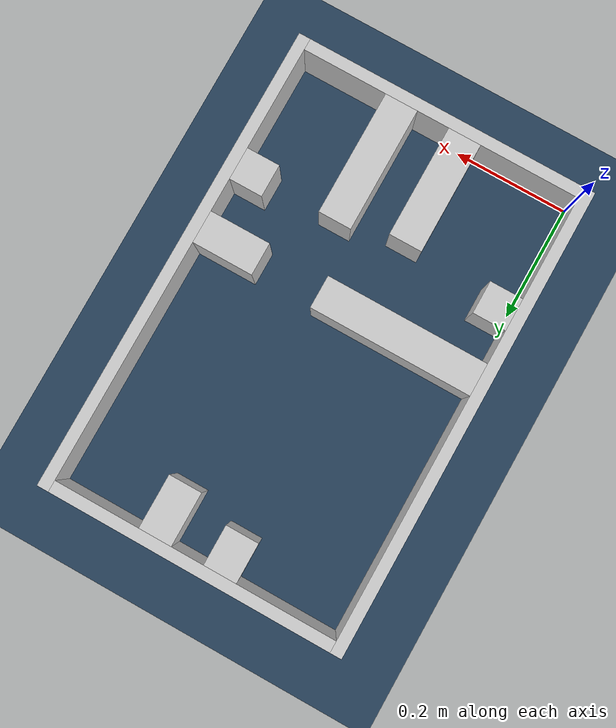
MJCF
<?xml version="1.0" ?>
<mujoco model="generated_real_template">
  <compiler angle="degree"/>
  <option timestep="0.002" integrator="implicitfast" iterations="100" cone="elliptic"/>
  <default>
    <geom density="1"/>
  </default>
  <asset>
    <texture builtin="gradient" height="3072" rgb1="0.3 0.5 0.7" rgb2="0 0 0" type="skybox" width="512"/>
    <texture builtin="checker" height="300" mark="edge" markrgb="0.8 0.8 0.8" name="groundplane" rgb1="0.2 0.3 0.4" rgb2="0.1 0.2 0.3" type="2d" width="300"/>
    <material name="groundplane" reflectance="0.2" texrepeat="5 5" texture="groundplane" texuniform="true"/>
  </asset>
  <worldbody>
    <light dir="0 0 -1" directional="true" pos="0 0 1.5"/>
    <geom name="floor" type="plane" condim="4" friction="0.5 0.005 0.001" material="groundplane" size="0 0 0.05"/>
    <body name="walls">
      <geom name="wall_boundary_left" type="box" condim="4" friction="1.0 0.005 0.0001" rgba="0.8 0.8 0.8 1" pos="-0.010000 0.387500 0.050000" euler="0 0 0.000000" size="0.010000 0.407500 0.050000"/>
      <geom name="wall_boundary_right" type="box" condim="4" friction="1.0 0.005 0.0001" rgba="0.8 0.8 0.8 1" pos="0.500000 0.387500 0.050000" euler="0 0 0.000000" size="0.010000 0.407500 0.050000"/>
      <geom name="wall_boundary_bottom" type="box" condim="4" friction="1.0 0.005 0.0001" rgba="0.8 0.8 0.8 1" pos="0.245000 -0.010000 0.050000" euler="0 0 0.000000" size="0.245000 0.010000 0.050000"/>
      <geom name="wall_boundary_top" type="box" condim="4" friction="1.0 0.005 0.0001" rgba="0.8 0.8 0.8 1" pos="0.245000 0.785000 0.050000" euler="0 0 0.000000" size="0.245000 0.010000 0.050000"/>
      <geom name="wall_inner_1_1" type="box" condim="4" friction="1.0 0.005 0.0001" rgba="0.8 0.8 0.8 1" pos="0.314245 0.108237 0.050000" euler="0 0 90.000000" size="0.108237 0.028500 0.050000"/>
      <geom name="wall_inner_1_2" type="box" condim="4" friction="1.0 0.005 0.0001" rgba="0.8 0.8 0.8 1" pos="0.314245 0.728645 0.050000" euler="0 0 90.000000" size="0.046355 0.028500 0.050000"/>
      <geom name="wall_inner_2_1" type="box" condim="4" friction="1.0 0.005 0.0001" rgba="0.8 0.8 0.8 1" pos="0.201090 0.096950 0.050000" euler="0 0 90.000000" size="0.096950 0.028500 0.050000"/>
      <geom name="wall_inner_2_2" type="box" condim="4" friction="1.0 0.005 0.0001" rgba="0.8 0.8 0.8 1" pos="0.201090 0.740609 0.050000" euler="0 0 90.000000" size="0.034391 0.028500 0.050000"/>
      <geom name="wall_inner_3_1" type="box" condim="4" friction="1.0 0.005 0.0001" rgba="0.8 0.8 0.8 1" pos="0.028682 0.210594 0.050000" euler="0 0 0.000000" size="0.028682 0.028500 0.050000"/>
      <geom name="wall_inner_3_2" type="box" condim="4" friction="1.0 0.005 0.0001" rgba="0.8 0.8 0.8 1" pos="0.461163 0.210594 0.050000" euler="0 0 0.000000" size="0.028837 0.028500 0.050000"/>
      <geom name="wall_inner_4_1" type="box" condim="4" friction="1.0 0.005 0.0001" rgba="0.8 0.8 0.8 1" pos="0.140363 0.325894 0.050000" euler="0 0 0.000000" size="0.140363 0.028500 0.050000"/>
      <geom name="wall_inner_4_2" type="box" condim="4" friction="1.0 0.005 0.0001" rgba="0.8 0.8 0.8 1" pos="0.437326 0.325894 0.050000" euler="0 0 0.000000" size="0.052674 0.028500 0.050000"/>
    </body>
  </worldbody>
</mujoco>
